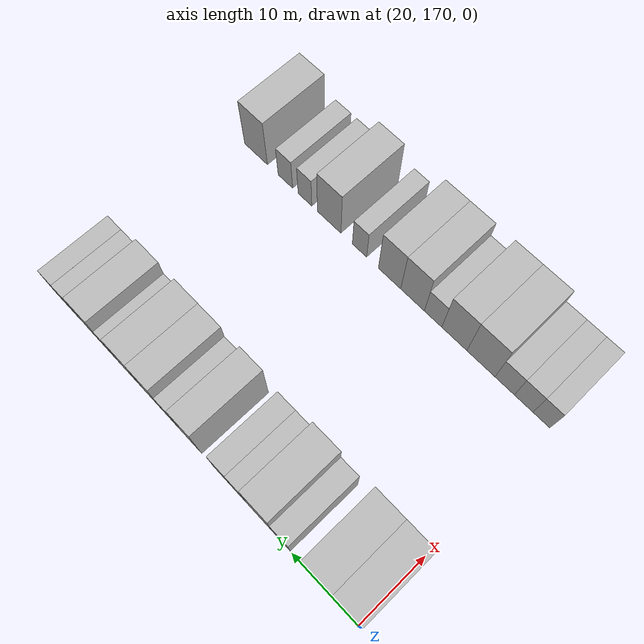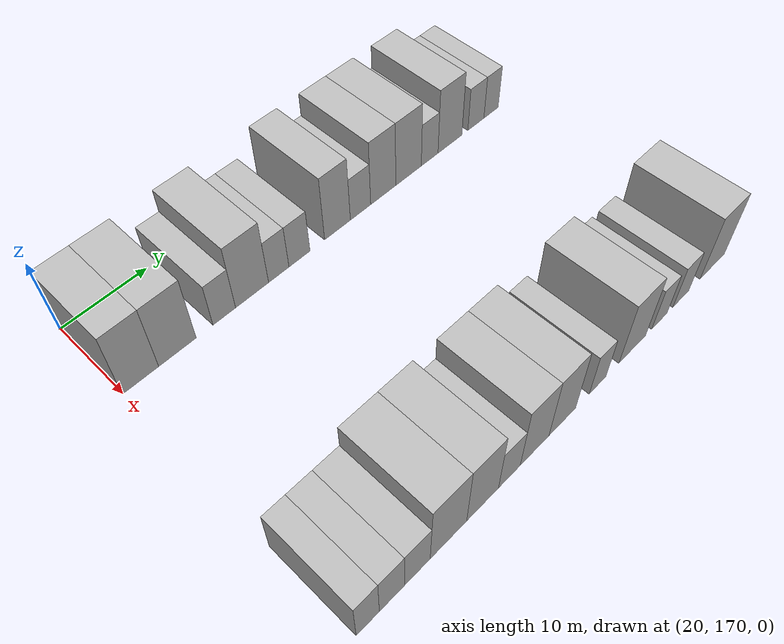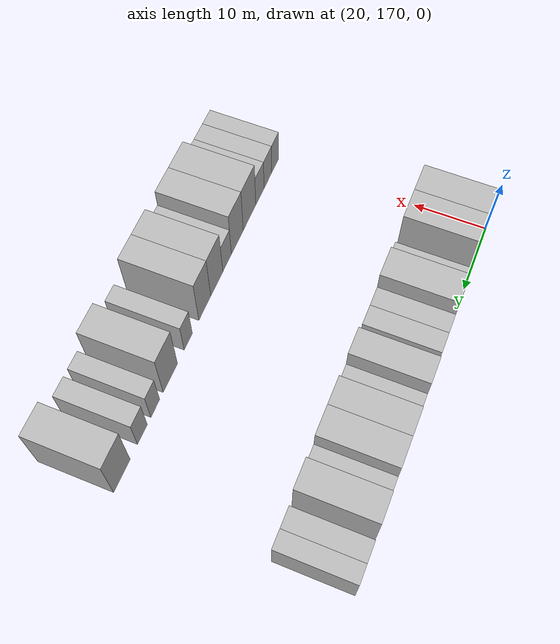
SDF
<sdf version="1.6">
 <world name="default">
  <model name="building_89">
   <static>1</static>
   <pose>25.0000 171.9140 0 0.000000 0.000000 0.000000</pose>
   <link name="link">
    <pose>0 0 4.50 0 0 0</pose>
    <collision name="collision"><geometry><box><size>10.0000 4.0523 9.0000</size></box></geometry></collision>
    <visual name="visual">
     <cast_shadows>0</cast_shadows>
     <geometry><box><size>10.0000 4.0523 9.0000</size></box></geometry>
     <material>
      <script>
       <uri>model://HANNAS_wall/materials/scripts</uri>
       <uri>model://HANNAS_wall/materials/textures</uri>
       <name>vrc/HANNAS_wall</name>
      </script>
     </material>
    </visual>
   </link>
  </model>
  <model name="building_90">
   <static>1</static>
   <pose>25.0000 176.1013 0 0.000000 0.000000 0.000000</pose>
   <link name="link">
    <pose>0 0 4.50 0 0 0</pose>
    <collision name="collision"><geometry><box><size>10.0000 4.3224 9.0000</size></box></geometry></collision>
    <visual name="visual">
     <cast_shadows>0</cast_shadows>
     <geometry><box><size>10.0000 4.3224 9.0000</size></box></geometry>
     <material>
      <script>
       <uri>model://HANNAS_wall/materials/scripts</uri>
       <uri>model://HANNAS_wall/materials/textures</uri>
       <name>vrc/HANNAS_wall</name>
      </script>
     </material>
    </visual>
   </link>
  </model>
  <model name="building_91">
   <static>1</static>
   <pose>25.0000 181.6408 0 0.000000 0.000000 0.000000</pose>
   <link name="link">
    <pose>0 0 3.00 0 0 0</pose>
    <collision name="collision"><geometry><box><size>10.0000 2.7566 6.0000</size></box></geometry></collision>
    <visual name="visual">
     <cast_shadows>0</cast_shadows>
     <geometry><box><size>10.0000 2.7566 6.0000</size></box></geometry>
     <material>
      <script>
       <uri>model://HANNAS_wall/materials/scripts</uri>
       <uri>model://HANNAS_wall/materials/textures</uri>
       <name>vrc/HANNAS_wall</name>
      </script>
     </material>
    </visual>
   </link>
  </model>
  <model name="building_92">
   <static>1</static>
   <pose>25.0000 185.1076 0 0.000000 0.000000 0.000000</pose>
   <link name="link">
    <pose>0 0 4.50 0 0 0</pose>
    <collision name="collision"><geometry><box><size>10.0000 4.1772 9.0000</size></box></geometry></collision>
    <visual name="visual">
     <cast_shadows>0</cast_shadows>
     <geometry><box><size>10.0000 4.1772 9.0000</size></box></geometry>
     <material>
      <script>
       <uri>model://HANNAS_wall/materials/scripts</uri>
       <uri>model://HANNAS_wall/materials/textures</uri>
       <name>vrc/HANNAS_wall</name>
      </script>
     </material>
    </visual>
   </link>
  </model>
  <model name="building_93">
   <static>1</static>
   <pose>25.0000 188.5227 0 0.000000 0.000000 0.000000</pose>
   <link name="link">
    <pose>0 0 3.00 0 0 0</pose>
    <collision name="collision"><geometry><box><size>10.0000 2.6529 6.0000</size></box></geometry></collision>
    <visual name="visual">
     <cast_shadows>0</cast_shadows>
     <geometry><box><size>10.0000 2.6529 6.0000</size></box></geometry>
     <material>
      <script>
       <uri>model://HANNAS_wall/materials/scripts</uri>
       <uri>model://HANNAS_wall/materials/textures</uri>
       <name>vrc/HANNAS_wall</name>
      </script>
     </material>
    </visual>
   </link>
  </model>
  <model name="building_94">
   <static>1</static>
   <pose>25.0000 191.2534 0 0.000000 0.000000 0.000000</pose>
   <link name="link">
    <pose>0 0 3.00 0 0 0</pose>
    <collision name="collision"><geometry><box><size>10.0000 2.8085 6.0000</size></box></geometry></collision>
    <visual name="visual">
     <cast_shadows>0</cast_shadows>
     <geometry><box><size>10.0000 2.8085 6.0000</size></box></geometry>
     <material>
      <script>
       <uri>model://HANNAS_wall/materials/scripts</uri>
       <uri>model://HANNAS_wall/materials/textures</uri>
       <name>vrc/HANNAS_wall</name>
      </script>
     </material>
    </visual>
   </link>
  </model>
  <model name="building_95">
   <static>1</static>
   <pose>25.0000 196.4663 0 0.000000 0.000000 0.000000</pose>
   <link name="link">
    <pose>0 0 4.50 0 0 0</pose>
    <collision name="collision"><geometry><box><size>10.0000 3.6174 9.0000</size></box></geometry></collision>
    <visual name="visual">
     <cast_shadows>0</cast_shadows>
     <geometry><box><size>10.0000 3.6174 9.0000</size></box></geometry>
     <material>
      <script>
       <uri>model://HANNAS_wall/materials/scripts</uri>
       <uri>model://HANNAS_wall/materials/textures</uri>
       <name>vrc/HANNAS_wall</name>
      </script>
     </material>
    </visual>
   </link>
  </model>
  <model name="building_96">
   <static>1</static>
   <pose>25.0000 199.7442 0 0.000000 0.000000 0.000000</pose>
   <link name="link">
    <pose>0 0 3.00 0 0 0</pose>
    <collision name="collision"><geometry><box><size>10.0000 2.9382 6.0000</size></box></geometry></collision>
    <visual name="visual">
     <cast_shadows>0</cast_shadows>
     <geometry><box><size>10.0000 2.9382 6.0000</size></box></geometry>
     <material>
      <script>
       <uri>model://HANNAS_wall/materials/scripts</uri>
       <uri>model://HANNAS_wall/materials/textures</uri>
       <name>vrc/HANNAS_wall</name>
      </script>
     </material>
    </visual>
   </link>
  </model>
  <model name="building_97">
   <static>1</static>
   <pose>25.0000 203.0771 0 0.000000 0.000000 0.000000</pose>
   <link name="link">
    <pose>0 0 4.50 0 0 0</pose>
    <collision name="collision"><geometry><box><size>10.0000 3.7277 9.0000</size></box></geometry></collision>
    <visual name="visual">
     <cast_shadows>0</cast_shadows>
     <geometry><box><size>10.0000 3.7277 9.0000</size></box></geometry>
     <material>
      <script>
       <uri>model://HANNAS_wall/materials/scripts</uri>
       <uri>model://HANNAS_wall/materials/textures</uri>
       <name>vrc/HANNAS_wall</name>
      </script>
     </material>
    </visual>
   </link>
  </model>
  <model name="building_98">
   <static>1</static>
   <pose>25.0000 206.9092 0 0.000000 0.000000 0.000000</pose>
   <link name="link">
    <pose>0 0 4.50 0 0 0</pose>
    <collision name="collision"><geometry><box><size>10.0000 3.9366 9.0000</size></box></geometry></collision>
    <visual name="visual">
     <cast_shadows>0</cast_shadows>
     <geometry><box><size>10.0000 3.9366 9.0000</size></box></geometry>
     <material>
      <script>
       <uri>model://HANNAS_wall/materials/scripts</uri>
       <uri>model://HANNAS_wall/materials/textures</uri>
       <name>vrc/HANNAS_wall</name>
      </script>
     </material>
    </visual>
   </link>
  </model>
  <model name="building_99">
   <static>1</static>
   <pose>25.0000 210.2032 0 0.000000 0.000000 0.000000</pose>
   <link name="link">
    <pose>0 0 3.00 0 0 0</pose>
    <collision name="collision"><geometry><box><size>10.0000 2.6513 6.0000</size></box></geometry></collision>
    <visual name="visual">
     <cast_shadows>0</cast_shadows>
     <geometry><box><size>10.0000 2.6513 6.0000</size></box></geometry>
     <material>
      <script>
       <uri>model://HANNAS_wall/materials/scripts</uri>
       <uri>model://HANNAS_wall/materials/textures</uri>
       <name>vrc/HANNAS_wall</name>
      </script>
     </material>
    </visual>
   </link>
  </model>
  <model name="building_100">
   <static>1</static>
   <pose>25.0000 213.4750 0 0.000000 0.000000 0.000000</pose>
   <link name="link">
    <pose>0 0 4.50 0 0 0</pose>
    <collision name="collision"><geometry><box><size>10.0000 3.8925 9.0000</size></box></geometry></collision>
    <visual name="visual">
     <cast_shadows>0</cast_shadows>
     <geometry><box><size>10.0000 3.8925 9.0000</size></box></geometry>
     <material>
      <script>
       <uri>model://HANNAS_wall/materials/scripts</uri>
       <uri>model://HANNAS_wall/materials/textures</uri>
       <name>vrc/HANNAS_wall</name>
      </script>
     </material>
    </visual>
   </link>
  </model>
  <model name="building_101">
   <static>1</static>
   <pose>25.0000 217.7741 0 0.000000 0.000000 0.000000</pose>
   <link name="link">
    <pose>0 0 3.00 0 0 0</pose>
    <collision name="collision"><geometry><box><size>10.0000 2.7057 6.0000</size></box></geometry></collision>
    <visual name="visual">
     <cast_shadows>0</cast_shadows>
     <geometry><box><size>10.0000 2.7057 6.0000</size></box></geometry>
     <material>
      <script>
       <uri>model://HANNAS_wall/materials/scripts</uri>
       <uri>model://HANNAS_wall/materials/textures</uri>
       <name>vrc/HANNAS_wall</name>
      </script>
     </material>
    </visual>
   </link>
  </model>
  <model name="building_102">
   <static>1</static>
   <pose>25.0000 220.3564 0 0.000000 0.000000 0.000000</pose>
   <link name="link">
    <pose>0 0 3.00 0 0 0</pose>
    <collision name="collision"><geometry><box><size>10.0000 2.4588 6.0000</size></box></geometry></collision>
    <visual name="visual">
     <cast_shadows>0</cast_shadows>
     <geometry><box><size>10.0000 2.4588 6.0000</size></box></geometry>
     <material>
      <script>
       <uri>model://HANNAS_wall/materials/scripts</uri>
       <uri>model://HANNAS_wall/materials/textures</uri>
       <name>vrc/HANNAS_wall</name>
      </script>
     </material>
    </visual>
   </link>
  </model>
  <model name="building_202">
   <static>1</static>
   <pose>55.0000 171.1110 0 0.000000 0.000000 0.000000</pose>
   <link name="link">
    <pose>0 0 3.00 0 0 0</pose>
    <collision name="collision"><geometry><box><size>10.0000 2.4951 6.0000</size></box></geometry></collision>
    <visual name="visual">
     <cast_shadows>0</cast_shadows>
     <geometry><box><size>10.0000 2.4951 6.0000</size></box></geometry>
     <material>
      <script>
       <uri>model://HANNAS_wall/materials/scripts</uri>
       <uri>model://HANNAS_wall/materials/textures</uri>
       <name>vrc/HANNAS_wall</name>
      </script>
     </material>
    </visual>
   </link>
  </model>
  <model name="building_203">
   <static>1</static>
   <pose>55.0000 173.7527 0 0.000000 0.000000 0.000000</pose>
   <link name="link">
    <pose>0 0 3.00 0 0 0</pose>
    <collision name="collision"><geometry><box><size>10.0000 2.7884 6.0000</size></box></geometry></collision>
    <visual name="visual">
     <cast_shadows>0</cast_shadows>
     <geometry><box><size>10.0000 2.7884 6.0000</size></box></geometry>
     <material>
      <script>
       <uri>model://HANNAS_wall/materials/scripts</uri>
       <uri>model://HANNAS_wall/materials/textures</uri>
       <name>vrc/HANNAS_wall</name>
      </script>
     </material>
    </visual>
   </link>
  </model>
  <model name="building_204">
   <static>1</static>
   <pose>55.0000 176.6191 0 0.000000 0.000000 0.000000</pose>
   <link name="link">
    <pose>0 0 3.00 0 0 0</pose>
    <collision name="collision"><geometry><box><size>10.0000 2.9443 6.0000</size></box></geometry></collision>
    <visual name="visual">
     <cast_shadows>0</cast_shadows>
     <geometry><box><size>10.0000 2.9443 6.0000</size></box></geometry>
     <material>
      <script>
       <uri>model://HANNAS_wall/materials/scripts</uri>
       <uri>model://HANNAS_wall/materials/textures</uri>
       <name>vrc/HANNAS_wall</name>
      </script>
     </material>
    </visual>
   </link>
  </model>
  <model name="building_205">
   <static>1</static>
   <pose>55.0000 180.2801 0 0.000000 0.000000 0.000000</pose>
   <link name="link">
    <pose>0 0 4.50 0 0 0</pose>
    <collision name="collision"><geometry><box><size>10.0000 4.3777 9.0000</size></box></geometry></collision>
    <visual name="visual">
     <cast_shadows>0</cast_shadows>
     <geometry><box><size>10.0000 4.3777 9.0000</size></box></geometry>
     <material>
      <script>
       <uri>model://HANNAS_wall/materials/scripts</uri>
       <uri>model://HANNAS_wall/materials/textures</uri>
       <name>vrc/HANNAS_wall</name>
      </script>
     </material>
    </visual>
   </link>
  </model>
  <model name="building_206">
   <static>1</static>
   <pose>55.0000 184.4689 0 0.000000 0.000000 0.000000</pose>
   <link name="link">
    <pose>0 0 4.50 0 0 0</pose>
    <collision name="collision"><geometry><box><size>10.0000 3.9998 9.0000</size></box></geometry></collision>
    <visual name="visual">
     <cast_shadows>0</cast_shadows>
     <geometry><box><size>10.0000 3.9998 9.0000</size></box></geometry>
     <material>
      <script>
       <uri>model://HANNAS_wall/materials/scripts</uri>
       <uri>model://HANNAS_wall/materials/textures</uri>
       <name>vrc/HANNAS_wall</name>
      </script>
     </material>
    </visual>
   </link>
  </model>
  <model name="building_207">
   <static>1</static>
   <pose>55.0000 187.8862 0 0.000000 0.000000 0.000000</pose>
   <link name="link">
    <pose>0 0 3.00 0 0 0</pose>
    <collision name="collision"><geometry><box><size>10.0000 2.8348 6.0000</size></box></geometry></collision>
    <visual name="visual">
     <cast_shadows>0</cast_shadows>
     <geometry><box><size>10.0000 2.8348 6.0000</size></box></geometry>
     <material>
      <script>
       <uri>model://HANNAS_wall/materials/scripts</uri>
       <uri>model://HANNAS_wall/materials/textures</uri>
       <name>vrc/HANNAS_wall</name>
      </script>
     </material>
    </visual>
   </link>
  </model>
  <model name="building_208">
   <static>1</static>
   <pose>55.0000 191.2525 0 0.000000 0.000000 0.000000</pose>
   <link name="link">
    <pose>0 0 4.50 0 0 0</pose>
    <collision name="collision"><geometry><box><size>10.0000 3.8978 9.0000</size></box></geometry></collision>
    <visual name="visual">
     <cast_shadows>0</cast_shadows>
     <geometry><box><size>10.0000 3.8978 9.0000</size></box></geometry>
     <material>
      <script>
       <uri>model://HANNAS_wall/materials/scripts</uri>
       <uri>model://HANNAS_wall/materials/textures</uri>
       <name>vrc/HANNAS_wall</name>
      </script>
     </material>
    </visual>
   </link>
  </model>
  <model name="building_209">
   <static>1</static>
   <pose>55.0000 195.0814 0 0.000000 0.000000 0.000000</pose>
   <link name="link">
    <pose>0 0 4.50 0 0 0</pose>
    <collision name="collision"><geometry><box><size>10.0000 3.7601 9.0000</size></box></geometry></collision>
    <visual name="visual">
     <cast_shadows>0</cast_shadows>
     <geometry><box><size>10.0000 3.7601 9.0000</size></box></geometry>
     <material>
      <script>
       <uri>model://HANNAS_wall/materials/scripts</uri>
       <uri>model://HANNAS_wall/materials/textures</uri>
       <name>vrc/HANNAS_wall</name>
      </script>
     </material>
    </visual>
   </link>
  </model>
  <model name="building_210">
   <static>1</static>
   <pose>55.0000 200.1977 0 0.000000 0.000000 0.000000</pose>
   <link name="link">
    <pose>0 0 3.00 0 0 0</pose>
    <collision name="collision"><geometry><box><size>10.0000 2.4726 6.0000</size></box></geometry></collision>
    <visual name="visual">
     <cast_shadows>0</cast_shadows>
     <geometry><box><size>10.0000 2.4726 6.0000</size></box></geometry>
     <material>
      <script>
       <uri>model://HANNAS_wall/materials/scripts</uri>
       <uri>model://HANNAS_wall/materials/textures</uri>
       <name>vrc/HANNAS_wall</name>
      </script>
     </material>
    </visual>
   </link>
  </model>
  <model name="building_211">
   <static>1</static>
   <pose>55.0000 205.5242 0 0.000000 0.000000 0.000000</pose>
   <link name="link">
    <pose>0 0 4.50 0 0 0</pose>
    <collision name="collision"><geometry><box><size>10.0000 4.1803 9.0000</size></box></geometry></collision>
    <visual name="visual">
     <cast_shadows>0</cast_shadows>
     <geometry><box><size>10.0000 4.1803 9.0000</size></box></geometry>
     <material>
      <script>
       <uri>model://HANNAS_wall/materials/scripts</uri>
       <uri>model://HANNAS_wall/materials/textures</uri>
       <name>vrc/HANNAS_wall</name>
      </script>
     </material>
    </visual>
   </link>
  </model>
  <model name="building_212">
   <static>1</static>
   <pose>55.0000 209.8619 0 0.000000 0.000000 0.000000</pose>
   <link name="link">
    <pose>0 0 3.00 0 0 0</pose>
    <collision name="collision"><geometry><box><size>10.0000 2.4951 6.0000</size></box></geometry></collision>
    <visual name="visual">
     <cast_shadows>0</cast_shadows>
     <geometry><box><size>10.0000 2.4951 6.0000</size></box></geometry>
     <material>
      <script>
       <uri>model://HANNAS_wall/materials/scripts</uri>
       <uri>model://HANNAS_wall/materials/textures</uri>
       <name>vrc/HANNAS_wall</name>
      </script>
     </material>
    </visual>
   </link>
  </model>
  <model name="building_213">
   <static>1</static>
   <pose>55.0000 213.4536 0 0.000000 0.000000 0.000000</pose>
   <link name="link">
    <pose>0 0 3.00 0 0 0</pose>
    <collision name="collision"><geometry><box><size>10.0000 2.6883 6.0000</size></box></geometry></collision>
    <visual name="visual">
     <cast_shadows>0</cast_shadows>
     <geometry><box><size>10.0000 2.6883 6.0000</size></box></geometry>
     <material>
      <script>
       <uri>model://HANNAS_wall/materials/scripts</uri>
       <uri>model://HANNAS_wall/materials/textures</uri>
       <name>vrc/HANNAS_wall</name>
      </script>
     </material>
    </visual>
   </link>
  </model>
  <model name="building_214">
   <static>1</static>
   <pose>55.0000 218.9622 0 0.000000 0.000000 0.000000</pose>
   <link name="link">
    <pose>0 0 4.50 0 0 0</pose>
    <collision name="collision"><geometry><box><size>10.0000 4.3288 9.0000</size></box></geometry></collision>
    <visual name="visual">
     <cast_shadows>0</cast_shadows>
     <geometry><box><size>10.0000 4.3288 9.0000</size></box></geometry>
     <material>
      <script>
       <uri>model://HANNAS_wall/materials/scripts</uri>
       <uri>model://HANNAS_wall/materials/textures</uri>
       <name>vrc/HANNAS_wall</name>
      </script>
     </material>
    </visual>
   </link>
  </model>
 </world>
</sdf>
